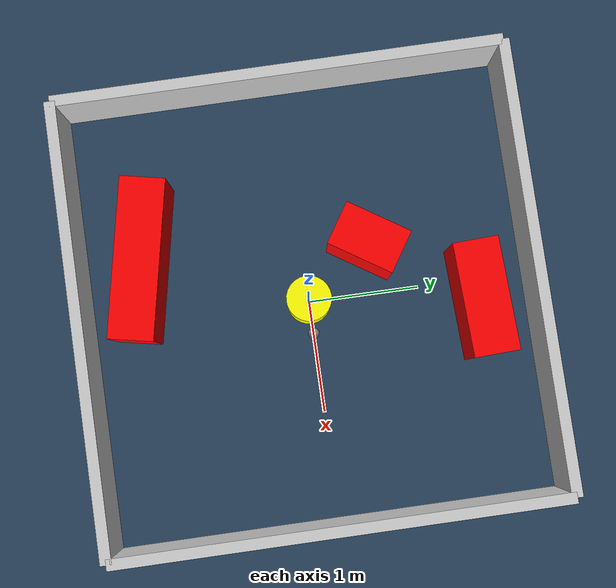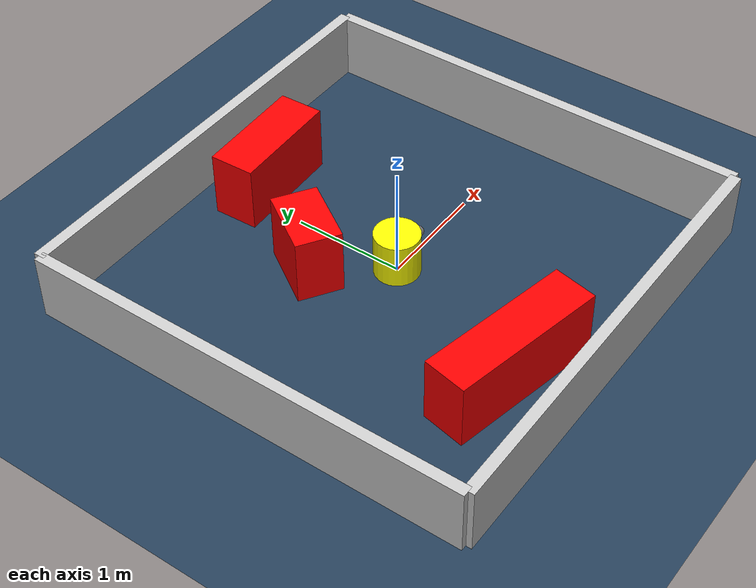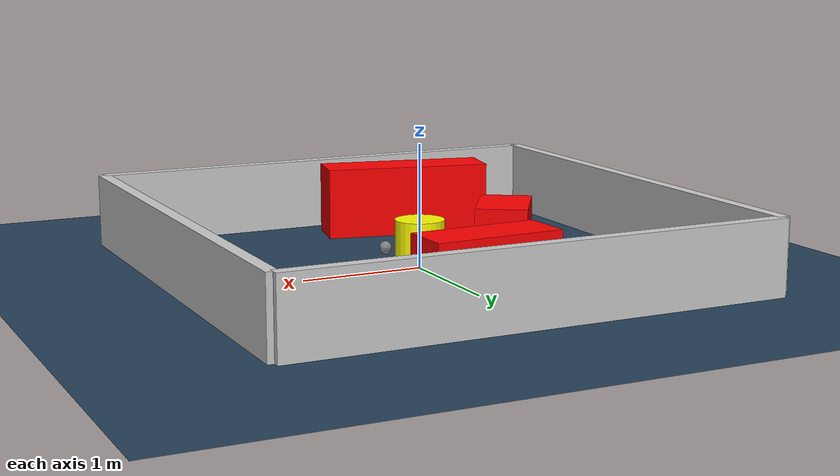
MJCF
<?xml version="1.0" ?>
<mujoco model="generated_environment">
  <option timestep="0.01" integrator="RK4" cone="elliptic"/>
  <default>
    <geom density="1"/>
  </default>
  <asset>
    <texture builtin="gradient" height="3072" rgb1="0.3 0.5 0.7" rgb2="0 0 0" type="skybox" width="512"/>
    <texture builtin="checker" height="300" mark="edge" markrgb="0.8 0.8 0.8" name="groundplane" rgb1="0.2 0.3 0.4" rgb2="0.1 0.2 0.3" type="2d" width="300"/>
    <material name="groundplane" reflectance="0.2" texrepeat="5 5" texture="groundplane" texuniform="true"/>
    <material name="robot" rgba="0.0 1.0 0.0 1"/>
  </asset>
  <worldbody>
    <light dir="0 0 -1" directional="true" pos="0 0 1.5"/>
    <geom condim="4" friction="1.0 0.005 0.001" material="groundplane" name="floor" size="0 0 0.05" type="plane"/>
    <body name="walls">
      <geom name="wall_1" condim="4" pos="-2.0 0.0 0.3" rgba="0.800000011920929 0.800000011920929 0.800000011920929 1.0" size="0.05 2.0 0.3" type="box"/>
      <geom name="wall_2" condim="4" pos="2.0 0.0 0.3" rgba="0.800000011920929 0.800000011920929 0.800000011920929 1.0" size="0.05 2.0 0.3" type="box"/>
      <geom name="wall_3" condim="4" pos="0.0 -2.0 0.3" rgba="0.800000011920929 0.800000011920929 0.800000011920929 1.0" size="2.0 0.05 0.3" type="box"/>
      <geom name="wall_4" condim="4" pos="0.0 2.0 0.3" rgba="0.800000011920929 0.800000011920929 0.800000011920929 1.0" size="2.0 0.05 0.3" type="box"/>
    </body>
    <body name="robot">
      <joint name="joint_x" type="slide" pos="0 0 0" axis="1 0 0"/>
      <joint name="joint_y" type="slide" pos="0 0 0" axis="0 1 0"/>
      <geom name="robot" type="sphere" pos="0.3 0.0 0.2" size="0.05" mass="5." friction="1.0 0.005 0.0001" condim="4" rgba="0.5 0.5 0.5 1.0"/>
      <site name="sensor_ball"/>
    </body>
    <body name="obstacle_movable_1">
      <geom name="obstacle_movable_1" condim="4" pos="0.0 0.0 0.2" euler="0 0 0.0" friction="1.0 0.005 0.001" rgba="1.0 1.0 0.0 1.0" size="0.2 0.2 0.0" type="cylinder" mass="0.1"/>
      <joint type="free"/>
    </body>
    <body name="obstacle_2_static">
      <geom name="obstacle_2_static" condim="4" pos="-0.43431124907220053 0.5857238154003286 0.3" euler="0 0 237.05804108393144" friction="1.0 0.005 0.001" rgba="1 0 0 1" size="0.30694979163588054 0.2 0.3" type="box"/>
    </body>
    <body name="obstacle_3_static">
      <geom name="obstacle_3_static" condim="4" pos="-0.5351489820731736 -1.4213236437495813 0.3" euler="0 0 168.51690331832154" friction="1.0 0.005 0.001" rgba="1 0 0 1" size="0.7066234270837428 0.2 0.3" type="box"/>
    </body>
    <body name="obstacle_4_static">
      <geom name="obstacle_4_static" condim="4" pos="0.21161538259510637 1.5034296636829676 0.3" euler="0 0 182.2706237595187" friction="1.0 0.005 0.001" rgba="1 0 0 1" size="0.49953396195638755 0.2 0.3" type="box"/>
    </body>
  </worldbody>
  <actuator>
    <motor name="actuator_x" joint="joint_x" gear="1" ctrlrange="-1 1"/>
    <motor name="actuator_y" joint="joint_y" gear="1" ctrlrange="-1 1"/>
  </actuator>
</mujoco>
